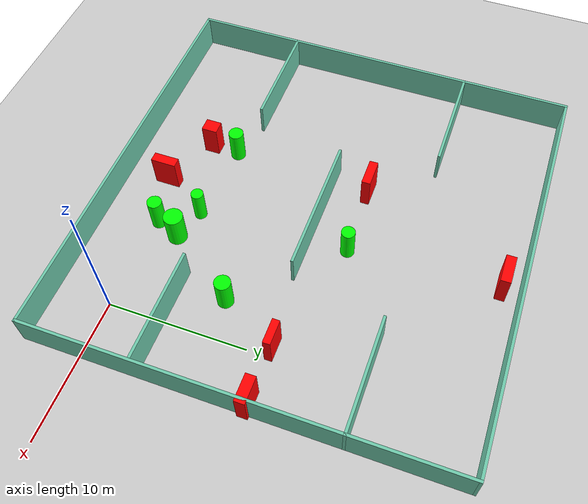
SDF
<sdf version="1.7">
 <world name="default">
  <light name="sun" type="directional">
   <pose>0 0 10 0 -0 0</pose>
   <diffuse>0.8 0.8 0.8 1</diffuse>
   <specular>0.2 0.2 0.2 1</specular>
   <attenuation>
    <range>1000</range>
    <constant>0.9</constant>
    <linear>0.01</linear>
    <quadratic>0.001</quadratic>
   </attenuation>
   <direction>-0.5 0.1 -0.9</direction>
   <spot><inner_angle>0</inner_angle><outer_angle>0</outer_angle><falloff>0</falloff></spot>
  </light>
  <model name="ground_plane">
   <static>1</static>
   <link name="link">
    <collision name="collision">
     <geometry><plane><normal>0 0 1</normal><size>100 100</size></plane></geometry>
     <surface>
      <contact><collide_bitmask>65535</collide_bitmask></contact>
      <friction><ode><mu>100</mu><mu2>50</mu2></ode></friction>
     </surface>
    </collision>
    <visual name="visual">
     <cast_shadows>0</cast_shadows>
     <geometry><plane><normal>0 0 1</normal><size>100 100</size></plane></geometry>
     <material>
      <script><uri>file://media/materials/scripts/gazebo.material</uri><name>Gazebo/Grey</name></script>
     </material>
    </visual>
   </link>
  </model>
  <gravity>0 0 -9.8</gravity>
  <magnetic_field>6e-06 2.3e-05 -4.2e-05</magnetic_field>
  <atmosphere type="adiabatic"/>
  <physics type="ode">
   <max_step_size>0.001</max_step_size>
   <real_time_factor>1</real_time_factor>
   <real_time_update_rate>1000</real_time_update_rate>
  </physics>
  <scene><ambient>0.4 0.4 0.4 1</ambient><background>0.7 0.7 0.7 1</background><shadows>1</shadows></scene>
  <spherical_coordinates>
   <surface_model>EARTH_WGS84</surface_model>
   <latitude_deg>0</latitude_deg>
   <longitude_deg>0</longitude_deg>
   <elevation>0</elevation>
   <heading_deg>0</heading_deg>
  </spherical_coordinates>
  <model name="my_base_walls">
   <link name="Wall_10">
    <collision name="Wall_10_Collision">
     <geometry><box><size>8.2 0.2 2.5</size></box></geometry>
     <pose>0 0 1.25 0 -0 0</pose>
    </collision>
    <visual name="Wall_10_Visual">
     <pose>0 0 1.25 0 -0 0</pose>
     <geometry><box><size>8.2 0.2 2.5</size></box></geometry>
     <material>
      <script><uri>file://media/materials/scripts/gazebo.material</uri><name>Gazebo/Grey</name></script>
      <ambient>0.435294 0.796078 0.67451 1</ambient>
     </material>
     <meta><layer>0</layer></meta>
    </visual>
    <pose>-11 -7 0 0 -0 0</pose>
   </link>
   <link name="Wall_12">
    <collision name="Wall_12_Collision">
     <geometry><box><size>8.2 0.2 2.5</size></box></geometry>
     <pose>0 0 1.25 0 -0 0</pose>
    </collision>
    <visual name="Wall_12_Visual">
     <pose>0 0 1.25 0 -0 0</pose>
     <geometry><box><size>8.2 0.2 2.5</size></box></geometry>
     <material>
      <script><uri>file://media/materials/scripts/gazebo.material</uri><name>Gazebo/Grey</name></script>
      <ambient>0.435294 0.796078 0.67451 1</ambient>
     </material>
     <meta><layer>0</layer></meta>
    </visual>
    <pose>-11 7 0 0 -0 0</pose>
   </link>
   <link name="Wall_14">
    <collision name="Wall_14_Collision">
     <geometry><box><size>8.2 0.2 2.5</size></box></geometry>
     <pose>0 0 1.25 0 -0 0</pose>
    </collision>
    <visual name="Wall_14_Visual">
     <pose>0 0 1.25 0 -0 0</pose>
     <geometry><box><size>8.2 0.2 2.5</size></box></geometry>
     <material>
      <script><uri>file://media/materials/scripts/gazebo.material</uri><name>Gazebo/Grey</name></script>
      <ambient>0.435294 0.796078 0.67451 1</ambient>
     </material>
     <meta><layer>0</layer></meta>
    </visual>
    <pose>11 7 0 0 -0 3.14159</pose>
   </link>
   <link name="Wall_16">
    <collision name="Wall_16_Collision">
     <geometry><box><size>10.2 0.2 2.5</size></box></geometry>
     <pose>0 0 1.25 0 -0 0</pose>
    </collision>
    <visual name="Wall_16_Visual">
     <pose>0 0 1.25 0 -0 0</pose>
     <geometry><box><size>10.2 0.2 2.5</size></box></geometry>
     <material>
      <script><uri>file://media/materials/scripts/gazebo.material</uri><name>Gazebo/Grey</name></script>
      <ambient>0.435294 0.796078 0.67451 1</ambient>
     </material>
     <meta><layer>0</layer></meta>
    </visual>
    <pose>0 0 0 0 -0 3.14159</pose>
   </link>
   <link name="Wall_2">
    <collision name="Wall_2_Collision">
     <geometry><box><size>30.2 0.2 2.5</size></box></geometry>
     <pose>0 0 1.25 0 -0 0</pose>
    </collision>
    <visual name="Wall_2_Visual">
     <pose>0 0 1.25 0 -0 0</pose>
     <geometry><box><size>30.2 0.2 2.5</size></box></geometry>
     <material>
      <script><uri>file://media/materials/scripts/gazebo.material</uri><name>Gazebo/Grey</name></script>
      <ambient>0.435294 0.796078 0.67451 1</ambient>
     </material>
     <meta><layer>0</layer></meta>
    </visual>
    <pose>0 -15 0 0 -0 3.14159</pose>
   </link>
   <link name="Wall_3">
    <collision name="Wall_3_Collision">
     <geometry><box><size>30.2 0.2 2.5</size></box></geometry>
     <pose>0 0 1.25 0 -0 0</pose>
    </collision>
    <visual name="Wall_3_Visual">
     <pose>0 0 1.25 0 -0 0</pose>
     <geometry><box><size>30.2 0.2 2.5</size></box></geometry>
     <material>
      <script><uri>file://media/materials/scripts/gazebo.material</uri><name>Gazebo/Grey</name></script>
      <ambient>0.435294 0.796078 0.67451 1</ambient>
     </material>
     <meta><layer>0</layer></meta>
    </visual>
    <pose>-15 0 0 0 -0 1.5708</pose>
   </link>
   <link name="Wall_4">
    <collision name="Wall_4_Collision">
     <geometry><box><size>30.2 0.2 2.5</size></box></geometry>
     <pose>0 0 1.25 0 -0 0</pose>
    </collision>
    <visual name="Wall_4_Visual">
     <pose>0 0 1.25 0 -0 0</pose>
     <geometry><box><size>30.2 0.2 2.5</size></box></geometry>
     <material>
      <script><uri>file://media/materials/scripts/gazebo.material</uri><name>Gazebo/Grey</name></script>
      <ambient>0.435294 0.796078 0.67451 1</ambient>
     </material>
     <meta><layer>0</layer></meta>
    </visual>
    <pose>0 15 0 0 -0 0</pose>
   </link>
   <link name="Wall_6">
    <collision name="Wall_6_Collision">
     <geometry><box><size>30.2 0.2 2.5</size></box></geometry>
     <pose>0 0 1.25 0 -0 0</pose>
    </collision>
    <visual name="Wall_6_Visual">
     <pose>0 0 1.25 0 -0 0</pose>
     <geometry><box><size>30.2 0.2 2.5</size></box></geometry>
     <material>
      <script><uri>file://media/materials/scripts/gazebo.material</uri><name>Gazebo/Grey</name></script>
      <ambient>0.435294 0.796078 0.67451 1</ambient>
     </material>
     <meta><layer>0</layer></meta>
    </visual>
    <pose>15 0 0 0 -0 1.5708</pose>
   </link>
   <link name="Wall_8">
    <collision name="Wall_8_Collision">
     <geometry><box><size>8.2 0.2 2.5</size></box></geometry>
     <pose>0 0 1.25 0 -0 0</pose>
    </collision>
    <visual name="Wall_8_Visual">
     <pose>0 0 1.25 0 -0 0</pose>
     <geometry><box><size>8.2 0.2 2.5</size></box></geometry>
     <material>
      <script><uri>file://media/materials/scripts/gazebo.material</uri><name>Gazebo/Grey</name></script>
      <ambient>0.435294 0.796078 0.67451 1</ambient>
     </material>
     <meta><layer>0</layer></meta>
    </visual>
    <pose>11 -7 0 0 -0 3.14159</pose>
   </link>
   <static>1</static>
   <pose>-11 11 0 0 -0 0</pose>
  </model>
  <model name="cylinder1">
   <static>1</static>
   <link name="link">
    <inertial>
     <mass>1</mass>
     <inertia><ixx>0.5</ixx><ixy>0</ixy><ixz>0</ixz><iyy>0.5</iyy><iyz>0</iyz><izz>1</izz></inertia>
    </inertial>
    <collision name="collision">
     <geometry><cylinder><radius>0.44884874026306704</radius><length>2.5</length></cylinder></geometry>
    </collision>
    <visual name="visual">
     <geometry><cylinder><radius>0.44884874026306704</radius><length>2.5</length></cylinder></geometry>
     <material>
      <ambient>0 1 0 1</ambient>
      <diffuse>0 1 0 1</diffuse>
      <specular>0.1 0.1 0.1 1</specular>
      <emissive>0 0 0 0</emissive>
     </material>
    </visual>
   </link>
   <pose>-8.900579056529883 2.7232172739127547 1.25 0 0 0</pose>
  </model>
  <model name="cylinder2">
   <static>1</static>
   <link name="link">
    <inertial>
     <mass>1</mass>
     <inertia><ixx>0.5</ixx><ixy>0</ixy><ixz>0</ixz><iyy>0.5</iyy><iyz>0</iyz><izz>1</izz></inertia>
    </inertial>
    <collision name="collision">
     <geometry><cylinder><radius>0.6984601113765094</radius><length>2.5</length></cylinder></geometry>
    </collision>
    <visual name="visual">
     <geometry><cylinder><radius>0.6984601113765094</radius><length>2.5</length></cylinder></geometry>
     <material>
      <ambient>0 1 0 1</ambient>
      <diffuse>0 1 0 1</diffuse>
      <specular>0.1 0.1 0.1 1</specular>
      <emissive>0 0 0 0</emissive>
     </material>
    </visual>
   </link>
   <pose>-6.5542371134985355 1.9709929496685579 1.25 0 0 0</pose>
  </model>
  <model name="cylinder3">
   <static>1</static>
   <link name="link">
    <inertial>
     <mass>1</mass>
     <inertia><ixx>0.5</ixx><ixy>0</ixy><ixz>0</ixz><iyy>0.5</iyy><iyz>0</iyz><izz>1</izz></inertia>
    </inertial>
    <collision name="collision">
     <geometry><cylinder><radius>0.4937869463486455</radius><length>2.5</length></cylinder></geometry>
    </collision>
    <visual name="visual">
     <geometry><cylinder><radius>0.4937869463486455</radius><length>2.5</length></cylinder></geometry>
     <material>
      <ambient>0 1 0 1</ambient>
      <diffuse>0 1 0 1</diffuse>
      <specular>0.1 0.1 0.1 1</specular>
      <emissive>0 0 0 0</emissive>
     </material>
    </visual>
   </link>
   <pose>-9.365520363189056 13.818112063918822 1.25 0 0 0</pose>
  </model>
  <model name="cylinder4">
   <static>1</static>
   <link name="link">
    <inertial>
     <mass>1</mass>
     <inertia><ixx>0.5</ixx><ixy>0</ixy><ixz>0</ixz><iyy>0.5</iyy><iyz>0</iyz><izz>1</izz></inertia>
    </inertial>
    <collision name="collision">
     <geometry><cylinder><radius>0.5492539503113044</radius><length>2.5</length></cylinder></geometry>
    </collision>
    <visual name="visual">
     <geometry><cylinder><radius>0.5492539503113044</radius><length>2.5</length></cylinder></geometry>
     <material>
      <ambient>0 1 0 1</ambient>
      <diffuse>0 1 0 1</diffuse>
      <specular>0.1 0.1 0.1 1</specular>
      <emissive>0 0 0 0</emissive>
     </material>
    </visual>
   </link>
   <pose>-15.01911035464331 3.117307349744621 1.25 0 0 0</pose>
  </model>
  <model name="cylinder5">
   <static>1</static>
   <link name="link">
    <inertial>
     <mass>1</mass>
     <inertia><ixx>0.5</ixx><ixy>0</ixy><ixz>0</ixz><iyy>0.5</iyy><iyz>0</iyz><izz>1</izz></inertia>
    </inertial>
    <collision name="collision">
     <geometry><cylinder><radius>0.5301105296169981</radius><length>2.5</length></cylinder></geometry>
    </collision>
    <visual name="visual">
     <geometry><cylinder><radius>0.5301105296169981</radius><length>2.5</length></cylinder></geometry>
     <material>
      <ambient>0 1 0 1</ambient>
      <diffuse>0 1 0 1</diffuse>
      <specular>0.1 0.1 0.1 1</specular>
      <emissive>0 0 0 0</emissive>
     </material>
    </visual>
   </link>
   <pose>-7.244806232810721 0.19748443074305344 1.25 0 0 0</pose>
  </model>
  <model name="cylinder6">
   <static>1</static>
   <link name="link">
    <inertial>
     <mass>1</mass>
     <inertia><ixx>0.5</ixx><ixy>0</ixy><ixz>0</ixz><iyy>0.5</iyy><iyz>0</iyz><izz>1</izz></inertia>
    </inertial>
    <collision name="collision">
     <geometry><cylinder><radius>0.5778533116404703</radius><length>2.5</length></cylinder></geometry>
    </collision>
    <visual name="visual">
     <geometry><cylinder><radius>0.5778533116404703</radius><length>2.5</length></cylinder></geometry>
     <material>
      <ambient>0 1 0 1</ambient>
      <diffuse>0 1 0 1</diffuse>
      <specular>0.1 0.1 0.1 1</specular>
      <emissive>0 0 0 0</emissive>
     </material>
    </visual>
   </link>
   <pose>-2.8729665623518095 7.29045009044804 1.25 0 0 0</pose>
  </model>
  <model name="box1">
   <static>1</static>
   <link name="link">
    <inertial>
     <mass>1</mass>
     <inertia><ixx>0.083</ixx><ixy>0</ixy><ixz>0</ixz><iyy>0.083</iyy><iyz>0</iyz><izz>0.083</izz></inertia>
    </inertial>
    <collision name="collision">
     <geometry><box><size>1.7663133423524133 0.5364678654012721 2.5</size></box></geometry>
    </collision>
    <visual name="visual">
     <geometry><box><size>1.7663133423524133 0.5364678654012721 2.5</size></box></geometry>
     <material>
      <ambient>1 0 0 1</ambient>
      <diffuse>1 0 0 1</diffuse>
      <specular>0.1 0.1 0.1 1</specular>
      <emissive>0 0 0 0</emissive>
     </material>
    </visual>
    <sensor name="my_contact" type="contact">
     <contact><collision>box_collision</collision><topic>__default_topic__</topic></contact>
    </sensor>
   </link>
   <pose>-0.6652391404426083 11.587429558870861 1.25 0 0 0</pose>
  </model>
  <model name="box2">
   <static>1</static>
   <link name="link">
    <inertial>
     <mass>1</mass>
     <inertia><ixx>0.083</ixx><ixy>0</ixy><ixz>0</ixz><iyy>0.083</iyy><iyz>0</iyz><izz>0.083</izz></inertia>
    </inertial>
    <collision name="collision">
     <geometry><box><size>0.7041457057781846 1.8639549822469172 2.5</size></box></geometry>
    </collision>
    <visual name="visual">
     <geometry><box><size>0.7041457057781846 1.8639549822469172 2.5</size></box></geometry>
     <material>
      <ambient>1 0 0 1</ambient>
      <diffuse>1 0 0 1</diffuse>
      <specular>0.1 0.1 0.1 1</specular>
      <emissive>0 0 0 0</emissive>
     </material>
    </visual>
    <sensor name="my_contact" type="contact">
     <contact><collision>box_collision</collision><topic>__default_topic__</topic></contact>
    </sensor>
   </link>
   <pose>-10.961270685536583 -0.7895596860119065 1.25 0 0 0</pose>
  </model>
  <model name="box3">
   <static>1</static>
   <link name="link">
    <inertial>
     <mass>1</mass>
     <inertia><ixx>0.083</ixx><ixy>0</ixy><ixz>0</ixz><iyy>0.083</iyy><iyz>0</iyz><izz>0.083</izz></inertia>
    </inertial>
    <collision name="collision">
     <geometry><box><size>2.0842418798172053 0.7215950663980094 2.5</size></box></geometry>
    </collision>
    <visual name="visual">
     <geometry><box><size>2.0842418798172053 0.7215950663980094 2.5</size></box></geometry>
     <material>
      <ambient>1 0 0 1</ambient>
      <diffuse>1 0 0 1</diffuse>
      <specular>0.1 0.1 0.1 1</specular>
      <emissive>0 0 0 0</emissive>
     </material>
    </visual>
    <sensor name="my_contact" type="contact">
     <contact><collision>box_collision</collision><topic>__default_topic__</topic></contact>
    </sensor>
   </link>
   <pose>-10.137257289729245 24.720499028157974 1.25 0 0 0</pose>
  </model>
  <model name="box4">
   <static>1</static>
   <link name="link">
    <inertial>
     <mass>1</mass>
     <inertia><ixx>0.083</ixx><ixy>0</ixy><ixz>0</ixz><iyy>0.083</iyy><iyz>0</iyz><izz>0.083</izz></inertia>
    </inertial>
    <collision name="collision">
     <geometry><box><size>0.9837826454095364 1.1575979214714587 2.5</size></box></geometry>
    </collision>
    <visual name="visual">
     <geometry><box><size>0.9837826454095364 1.1575979214714587 2.5</size></box></geometry>
     <material>
      <ambient>1 0 0 1</ambient>
      <diffuse>1 0 0 1</diffuse>
      <specular>0.1 0.1 0.1 1</specular>
      <emissive>0 0 0 0</emissive>
     </material>
    </visual>
    <sensor name="my_contact" type="contact">
     <contact><collision>box_collision</collision><topic>__default_topic__</topic></contact>
    </sensor>
   </link>
   <pose>-15.089915692921789 1.0996073087409455 1.25 0 0 0</pose>
  </model>
  <model name="box5">
   <static>1</static>
   <link name="link">
    <inertial>
     <mass>1</mass>
     <inertia><ixx>0.083</ixx><ixy>0</ixy><ixz>0</ixz><iyy>0.083</iyy><iyz>0</iyz><izz>0.083</izz></inertia>
    </inertial>
    <collision name="collision">
     <geometry><box><size>2.024803089317279 0.6417464592028852 2.5</size></box></geometry>
    </collision>
    <visual name="visual">
     <geometry><box><size>2.024803089317279 0.6417464592028852 2.5</size></box></geometry>
     <material>
      <ambient>1 0 0 1</ambient>
      <diffuse>1 0 0 1</diffuse>
      <specular>0.1 0.1 0.1 1</specular>
      <emissive>0 0 0 0</emissive>
     </material>
    </visual>
    <sensor name="my_contact" type="contact">
     <contact><collision>box_collision</collision><topic>__default_topic__</topic></contact>
    </sensor>
   </link>
   <pose>-14.8061329671796 13.681353805210872 1.25 0 0 0</pose>
  </model>
  <model name="box6">
   <static>1</static>
   <link name="link">
    <inertial>
     <mass>1</mass>
     <inertia><ixx>0.083</ixx><ixy>0</ixy><ixz>0</ixz><iyy>0.083</iyy><iyz>0</iyz><izz>0.083</izz></inertia>
    </inertial>
    <collision name="collision">
     <geometry><box><size>1.8974633679454687 0.7385470753651853 2.5</size></box></geometry>
    </collision>
    <visual name="visual">
     <geometry><box><size>1.8974633679454687 0.7385470753651853 2.5</size></box></geometry>
     <material>
      <ambient>1 0 0 1</ambient>
      <diffuse>1 0 0 1</diffuse>
      <specular>0.1 0.1 0.1 1</specular>
      <emissive>0 0 0 0</emissive>
     </material>
    </visual>
    <sensor name="my_contact" type="contact">
     <contact><collision>box_collision</collision><topic>__default_topic__</topic></contact>
    </sensor>
   </link>
   <pose>3.3632636374926186 11.486832997741743 1.25 0 0 0</pose>
  </model>
 </world>
</sdf>
